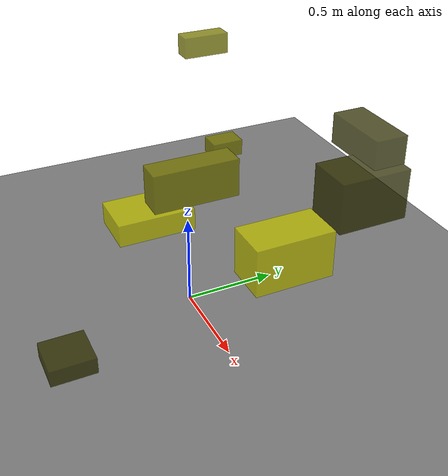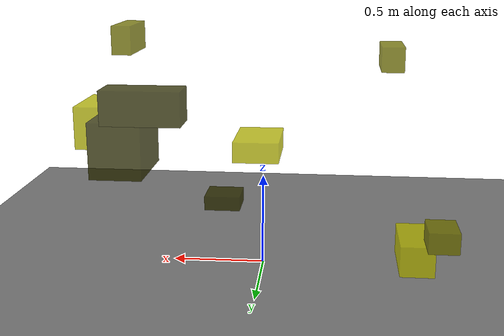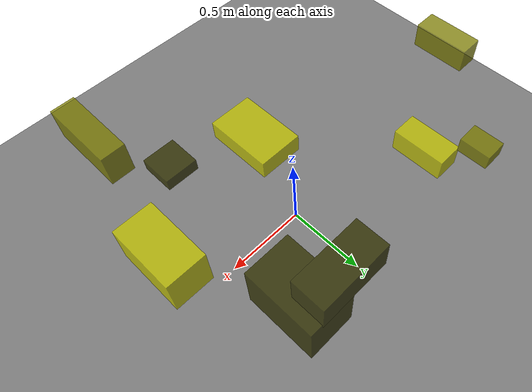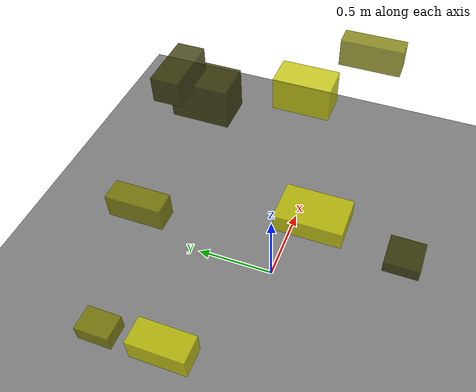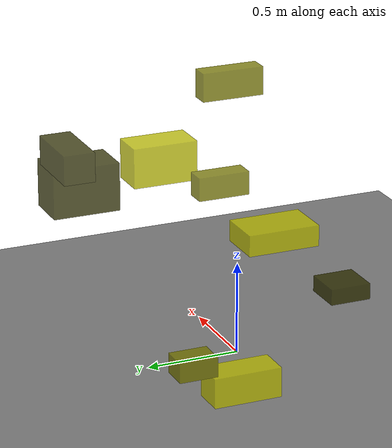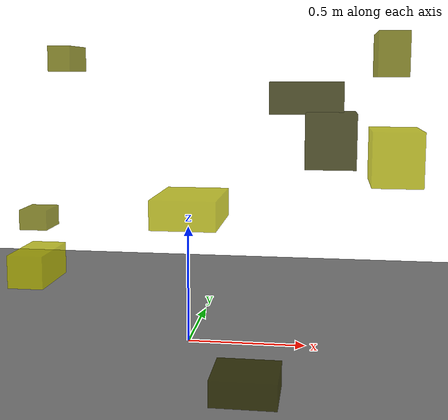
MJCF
<?xml version="1.0"?>
<mujoco model="obstacle_scene">
  <compiler angle="radian" coordinate="local"/>
  <option timestep="0.001" gravity="0 0 -9.81"/>

  <asset>
    <material name="obstacle_mat" rgba="0.8 0.8 0.0 0.8"/>
    <material name="ground_mat" rgba="0.5 0.5 0.5 1"/>
  </asset>

  <worldbody>
    <!-- Ground plane -->
    <geom name="ground" type="plane" size="3 3 0.1" material="ground_mat"/>

    <!-- Obstacles -->
    <body name="obstacle_0" pos="0.324368 -0.773179 0.114700">
      <geom name="obs_0" type="box" size="0.113524 0.115974 0.045038" rgba="0.2 0.2 0.0 0.8"/>
    </body>
    <body name="obstacle_1" pos="-0.888856 0.628638 0.413290">
      <geom name="obs_1" type="box" size="0.071301 0.098043 0.050716" rgba="0.5 0.5 0.0 0.8"/>
    </body>
    <body name="obstacle_2" pos="0.046947 -0.230664 0.617533">
      <geom name="obs_2" type="box" size="0.127568 0.196865 0.057508" rgba="0.8 0.8 0.0 0.8"/>
    </body>
    <body name="obstacle_3" pos="0.472028 0.748877 1.028719">
      <geom name="obs_3" type="box" size="0.181956 0.084134 0.079250" rgba="0.2 0.2 0.0 0.8"/>
    </body>
    <body name="obstacle_4" pos="-0.641104 0.381683 1.214768">
      <geom name="obs_4" type="box" size="0.052096 0.128875 0.057894" rgba="0.5 0.5 0.0 0.8"/>
    </body>
    <body name="obstacle_5" pos="0.856683 0.082947 0.805143">
      <geom name="obs_5" type="box" size="0.102073 0.183404 0.112108" rgba="0.8 0.8 0.0 0.8"/>
    </body>
    <body name="obstacle_6" pos="0.593301 0.643704 0.830963">
      <geom name="obs_6" type="box" size="0.120347 0.183328 0.130762" rgba="0.2 0.2 0.0 0.8"/>
    </body>
    <body name="obstacle_7" pos="0.800125 -0.308820 1.212285">
      <geom name="obs_7" type="box" size="0.053972 0.175133 0.079628" rgba="0.5 0.5 0.0 0.8"/>
    </body>
    <body name="obstacle_8" pos="-0.798204 0.335551 0.232941">
      <geom name="obs_8" type="box" size="0.084917 0.176514 0.077481" rgba="0.8 0.8 0.0 0.8"/>
    </body>
  </worldbody>
</mujoco>
